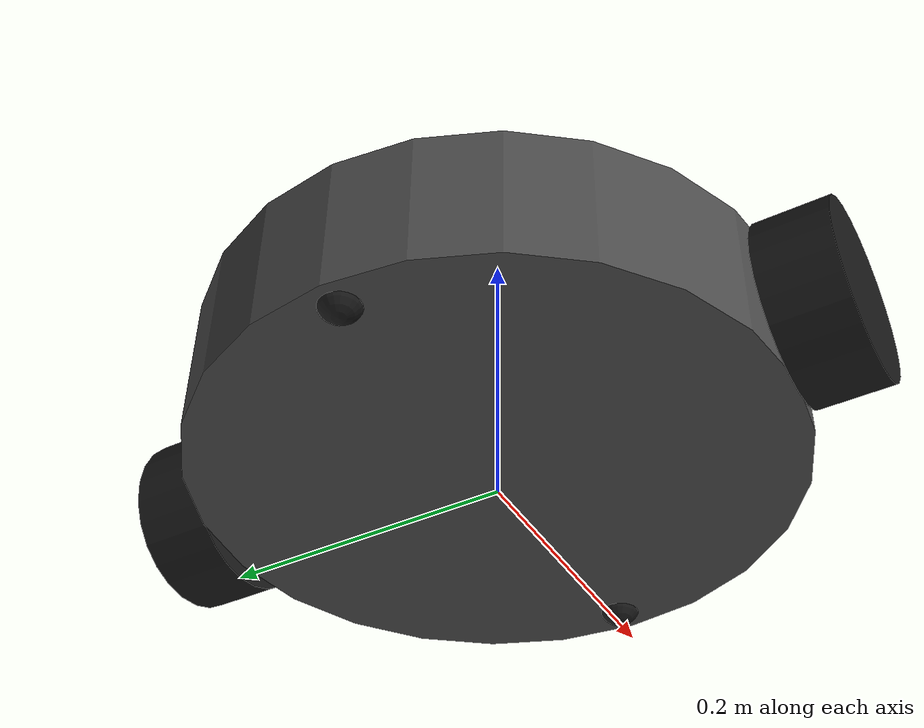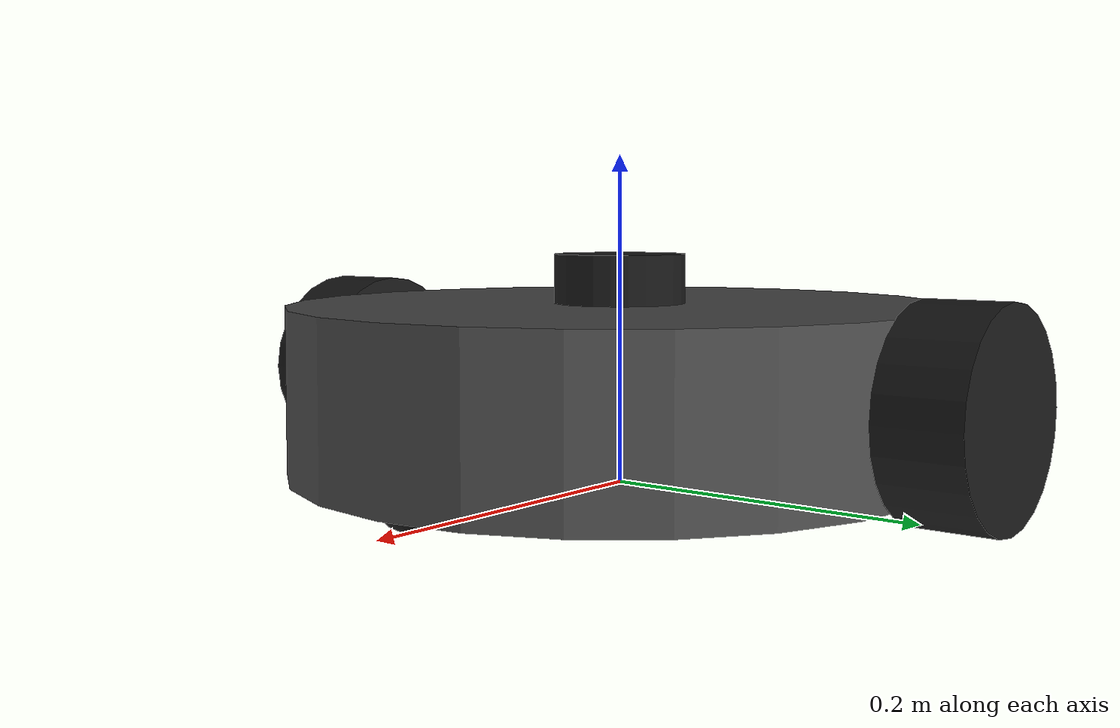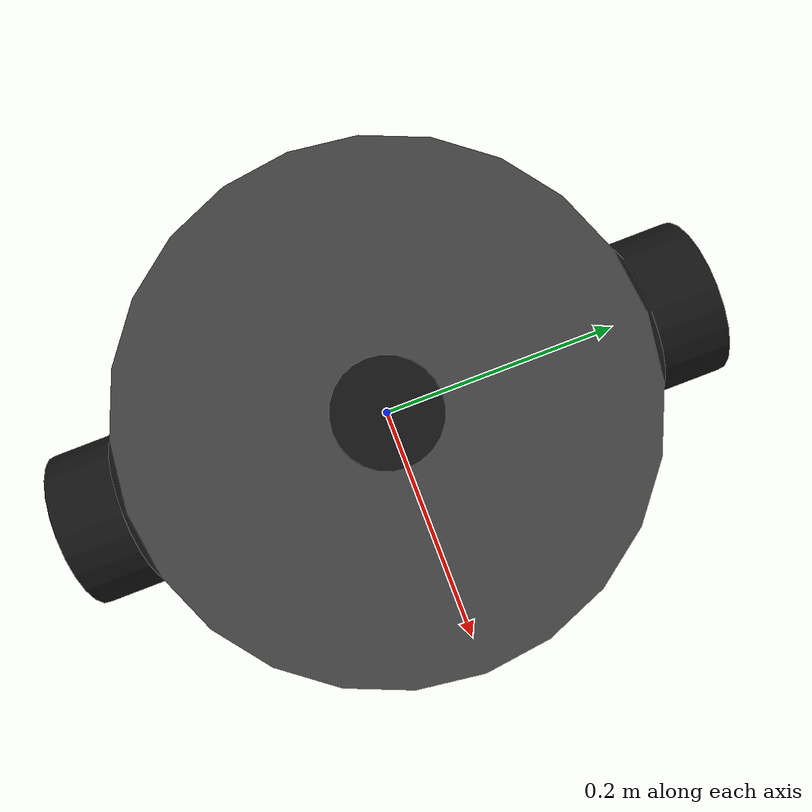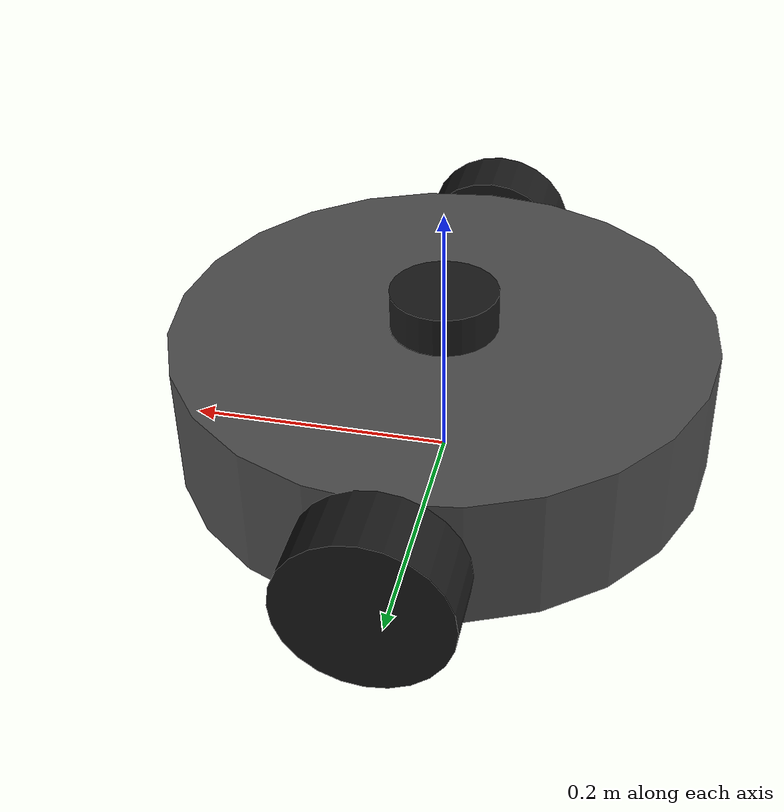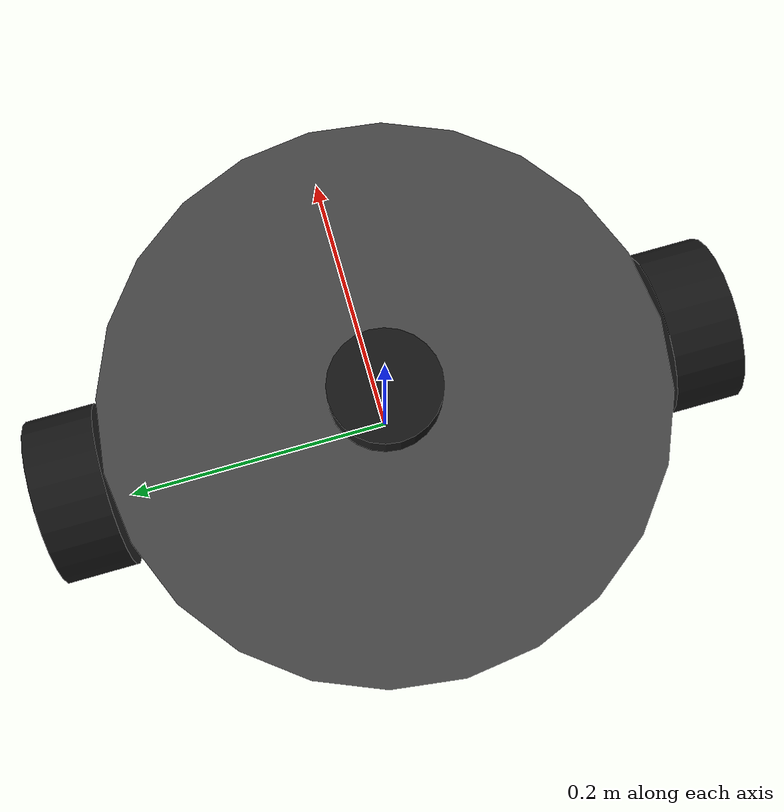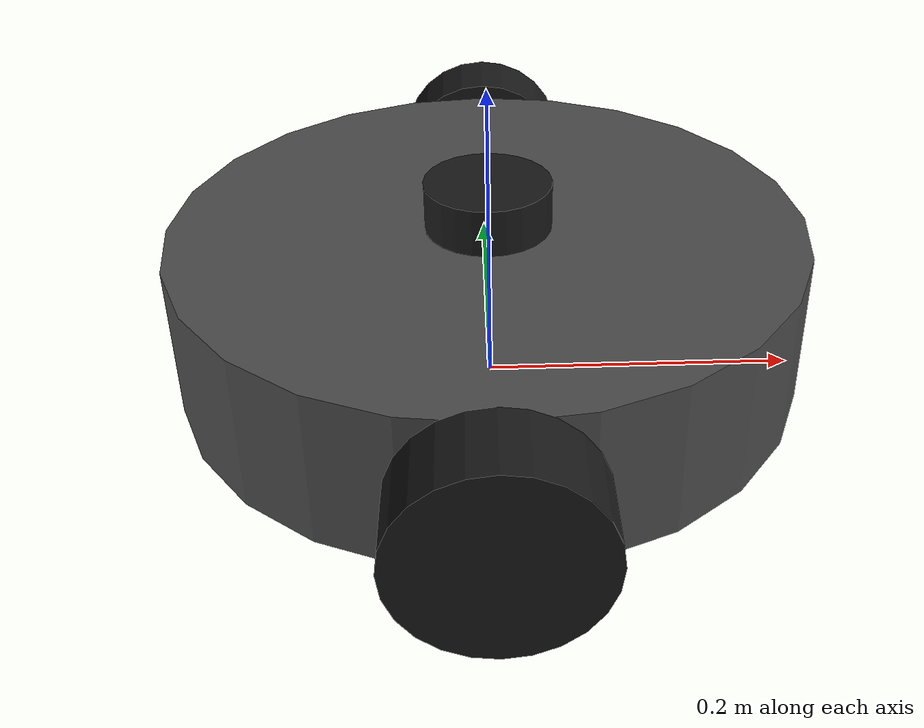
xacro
<?xml version="1.0"?>
<robot name="lex_robot" xmlns:xacro="http://www.ros.org/wiki/xacro">

    <!-- Include components -->
    <xacro:include filename="$(find lex_simulation)/robot_description/common/wheel.xacro" />
    <xacro:include filename="$(find lex_simulation)/robot_description/common/caster_wheel.xacro" />
    <xacro:include filename="$(find lex_simulation)/robot_description/sensors/lidar.xacro" />
    <xacro:include filename="$(find lex_simulation)/robot_description/control/diff_drive.xacro" />

    <!-- Robot parameters -->
    <xacro:property name="body_radius" value="0.2" />
    <xacro:property name="body_height" value="0.1" />
    <xacro:property name="wheel_radius" value="0.06" />
    <xacro:property name="wheel_width" value="0.05" />
    <xacro:property name="caster_radius" value="0.015" />

    <!-- Materials -->
    <material name="body_color">
        <color rgba="0.3 0.3 0.3 1.0" />
    </material>
    <material name="wheel_color">
        <color rgba="0.1 0.1 0.1 1.0" />
    </material>

<!-- Base Footprint -->
    <link name="base_footprint" />

    <joint name="base_footprint_joint" type="fixed">
        <parent link="base_footprint" />
        <child link="base_link" />
        <origin xyz="0 0 ${wheel_radius - body_height/2}" rpy="0 0 0" />
    </joint>

<!-- Base Link -->
    <link name="base_link">
        <visual>
            <geometry>
                <cylinder radius="${body_radius}" length="${body_height}" />
            </geometry>
            <origin xyz="0 0 ${body_height/2}" rpy="0 0 0" />
            <material name="body_color" />
        </visual>
        <collision>
            <geometry>
                <cylinder radius="${body_radius}" length="${body_height}" />
            </geometry>
            <origin xyz="0 0 ${body_height/2}" rpy="0 0 0" />
        </collision>
        <inertial>
            <mass value="3.0" />
            <origin xyz="0 0 ${body_height/2}" rpy="0 0 0" />
            <inertia ixx="0.02" ixy="0.0" ixz="0.0"
                     iyy="0.02" iyz="0.0"
                     izz="0.03" />
        </inertial>
    </link>

<!-- Create wheels -->
    <xacro:wheel prefix="left" reflect="1" parent="base_link"
                 xyz="0 ${body_radius + wheel_width/2} ${body_height/2}" rpy="0 0 0"
                 wheel_radius="${wheel_radius}" wheel_width="${wheel_width}" />
    <xacro:wheel prefix="right" reflect="-1" parent="base_link"
                 xyz="0 ${-body_radius - wheel_width/2} ${body_height/2}" rpy="0 0 0"
                 wheel_radius="${wheel_radius}" wheel_width="${wheel_width}" />

<!-- Front and rear casters -->
    <xacro:caster_wheel prefix="front" parent="base_link"
                        xyz="${body_radius - 0.02} 0 ${caster_radius/2 -0.001}" rpy="0 0 0"
                        caster_radius="${caster_radius}" />
    <xacro:caster_wheel prefix="rear" parent="base_link"
                        xyz="${-body_radius + 0.02} 0 ${caster_radius/2 -0.001}" rpy="0 0 0"
                        caster_radius="${caster_radius}" />

<!-- Lidar sensor (on top of body) -->
    <xacro:lidar_sensor parent="base_link" xyz="0 0 ${body_height + 0.015}" rpy="0 0 0" />

<!-- Gazebo Related -->
    <gazebo reference="base_link">
        <material>Gazebo/DarkGrey</material>
        <mu1 value="0.5" />
        <mu2 value="0.5" />
    </gazebo>

    <xacro:diff_drive_controller wheel_separation="${2 * (body_radius + wheel_width/2)}" wheel_diameter="${2 * wheel_radius}" />

</robot>

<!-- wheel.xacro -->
<robot name="wheel" xmlns:xacro="http://www.ros.org/wiki/xacro">

    <!-- Wheel macro with explicit parameters -->
    <xacro:macro name="wheel" params="prefix reflect parent xyz rpy wheel_radius wheel_width">
        <joint name="${prefix}_wheel_joint" type="continuous">
            <parent link="${parent}" />
            <child link="${prefix}_wheel" />
            <origin xyz="${xyz}" rpy="${rpy}" />
            <axis xyz="0 1 0" />
            <dynamics damping="0.1" friction="0.1" />
        </joint>

        <link name="${prefix}_wheel">
            <visual>
                <geometry>
                    <cylinder radius="${wheel_radius}" length="${wheel_width}" />
                </geometry>
                <origin xyz="0 0 0" rpy="${pi/2} 0 0" />
                <material name="wheel_color">
                    <color rgba="0.1 0.1 0.1 1.0" />
                </material>
            </visual>
            <collision>
                <geometry>
                    <cylinder radius="${wheel_radius}" length="${wheel_width}" />
                </geometry>
                <origin xyz="0 0 0" rpy="${pi/2} 0 0" />
            </collision>
            <inertial>
                <mass value="0.05" />
                <origin xyz="0 0 0" rpy="0 0 0" />
                <inertia ixx="0.00001" ixy="0.0" ixz="0.0"
                         iyy="0.00001" iyz="0.0"
                         izz="0.00001" />
            </inertial>
        </link>

        <gazebo reference="${prefix}_wheel">
            <mu1 value="1.0" />
            <mu2 value="1.0" />
            <kp value="100000.0" />
            <kd value="10.0" />
            <material>Gazebo/DarkGrey</material>
        </gazebo>
    </xacro:macro>

</robot>

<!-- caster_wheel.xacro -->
<robot name="caster_wheel" xmlns:xacro="http://www.ros.org/wiki/xacro">

    <!-- Caster wheel macro with explicit parameters -->
    <xacro:macro name="caster_wheel" params="prefix parent xyz rpy caster_radius">
        <link name="${prefix}_caster">
            <visual>
                <geometry>
                    <sphere radius="${caster_radius}" />
                </geometry>
                <material name="wheel_color">
                    <color rgba="0.1 0.1 0.1 1.0" />
                </material>
            </visual>
            <collision>
                <geometry>
                    <sphere radius="${caster_radius}" />
                </geometry>
            </collision>
            <inertial>
                <mass value="0.01" />
                <origin xyz="0 0 0" rpy="0 0 0" />
                <inertia ixx="0.000001" ixy="0.0" ixz="0.0"
                         iyy="0.000001" iyz="0.0"
                         izz="0.000001" />
            </inertial>
        </link>

        <joint name="${prefix}_caster_joint" type="fixed">
            <parent link="${parent}" />
            <child link="${prefix}_caster" />
            <origin xyz="${xyz}" rpy="${rpy}" />
        </joint>

        <gazebo reference="${prefix}_caster">
            <mu1 value="0.0" />
            <mu2 value="0.0" />
            <kp value="100000.0" />
            <kd value="1.0" />
            <material>Gazebo/Grey</material>
        </gazebo>
    </xacro:macro>

</robot>

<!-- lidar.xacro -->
<robot name="lidar_sensor" xmlns:xacro="http://www.ros.org/wiki/xacro">

    <!-- Lidar sensor macro with configurable position -->
    <xacro:macro name="lidar_sensor" params="parent xyz rpy">

        <!-- Joint connecting lidar to base -->
        <joint name="lidar_joint" type="fixed">
            <parent link="${parent}" />
            <child link="lidar_link" />
            <origin xyz="${xyz}" rpy="${rpy}" />
        </joint>

        <!-- Lidar Link -->
        <link name="lidar_link">
            <visual>
                <geometry>
                    <cylinder radius="0.04" length="0.03" />
                </geometry>
                <material name="lidar_color">
                    <color rgba="0.1 0.1 0.1 1.0" />
                </material>
            </visual>
            <collision>
                <geometry>
                    <cylinder radius="0.04" length="0.03" />
                </geometry>
            </collision>
            <inertial>
                <mass value="0.05" />
                <origin xyz="0 0 0" rpy="0 0 0" />
                <inertia ixx="0.00001" ixy="0.0" ixz="0.0"
                         iyy="0.00001" iyz="0.0"
                         izz="0.00001" />
            </inertial>
        </link>

        <!-- Gazebo Lidar Plugin -->
        <gazebo reference="lidar_link">
            <sensor type="ray" name="lidar_sensor">
                <pose>0 0 0 0 0 0</pose>
                <visualize>true</visualize>
                <update_rate>10</update_rate>
                <ray>
                    <scan>
                        <horizontal>
                            <samples>360</samples>
                            <resolution>1</resolution>
                            <min_angle>-3.14159</min_angle>
                            <max_angle>3.14159</max_angle>
                        </horizontal>
                    </scan>
                    <range>
                        <min>0.1</min>
                        <max>30.0</max>
                        <resolution>0.01</resolution>
                    </range>
                    <noise>
                        <type>gaussian</type>
                        <mean>0.0</mean>
                        <stddev>0.01</stddev>
                    </noise>
                </ray>
                <plugin name="gazebo_ros_lidar" filename="libgazebo_ros_laser.so">
                    <topicName>/scan</topicName>
                    <frameName>lidar_link</frameName>
                </plugin>
            </sensor>
            <material>Gazebo/Black</material>
        </gazebo>

    </xacro:macro>

</robot>
